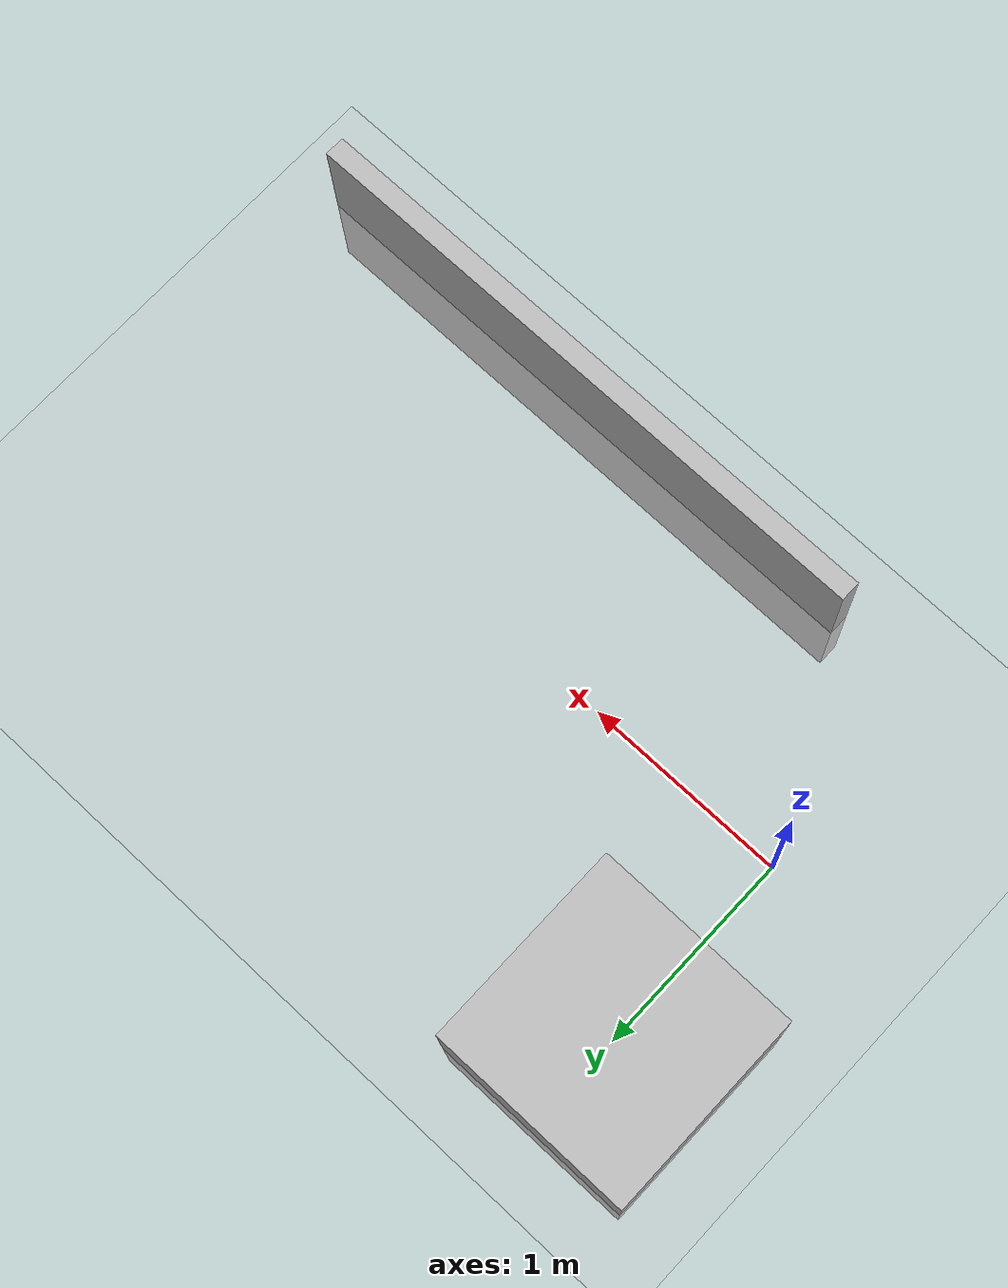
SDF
<?xml version="1.0" ?>
<sdf version="1.8">
    <world name="default">
        <plugin filename="gz-sim-physics-system" name="gz::sim::systems::Physics">
        </plugin>
        <plugin filename="gz-sim-scene-broadcaster-system" name="gz::sim::systems::SceneBroadcaster">
        </plugin>
        <plugin filename="gz-sim-user-commands-system" name="gz::sim::systems::UserCommands">
        </plugin>
        <plugin filename="gz-sim-sensors-system" name="gz::sim::systems::Sensors">
            <render_engine>ogre2</render_engine>
        </plugin>

        <light name="sun" type="directional">
            <cast_shadows>true</cast_shadows>
            <pose>0 0 10 0 0 0</pose>
            <diffuse>0.8 0.8 0.8 1</diffuse>
            <specular>0.2 0.2 0.2 1</specular>
            <attenuation>
                <range>1000</range>
                <constant>0.9</constant>
                <linear>0.01</linear>
                <quadratic>0.001</quadratic>
            </attenuation>
            <direction>-0.5 0.1 -0.9</direction>
        </light>
        <model name="ground_plane">
            <static>true</static>
            <link name="link">
                <collision name="collision">
                    <geometry>
                        <plane>
                            <normal>0 0 1</normal>
                            <size>100 100</size>
                        </plane>
                    </geometry>
                </collision>
                <visual name="visual">
                    <geometry>
                        <plane>
                            <normal>0 0 1</normal>
                            <size>100 100</size>
                        </plane>
                    </geometry>
                    <material>
                        <ambient>0.8 0.8 0.8 1</ambient>
                        <diffuse>0.8 0.8 0.8 1</diffuse>
                        <specular>0.8 0.8 0.8 1</specular>
                    </material>
                </visual>
            </link>
        </model>

        <!-- Hộp 1x1x1 tại (0, 1, 0) -->
        <model name="box1">
            <pose>0 1 0 0 0 0</pose>
            <static>true</static>
            <link name="box1_link">
                <collision name="box1_collision">
                    <geometry><box><size>1 1 1</size></box></geometry>
                </collision>
                <visual name="box1_visual">
                    <geometry><box><size>1 1 1</size></box></geometry>
                </visual>
            </link>
        </model>

        <!-- Tường mỏng 3x0.1x1 tại (2, -1, 0) -->
        <model name="wall1">
            <pose>2 -1 0 0 0 0</pose>
            <static>true</static>
            <link name="wall1_link">
                <collision name="wall1_collision">
                    <geometry><box><size>3 0.1 1</size></box></geometry>
                </collision>
                <visual name="wall1_visual">
                    <geometry><box><size>3 0.1 1</size></box></geometry>
                </visual>
            </link>
        </model>
    </world>
</sdf>
